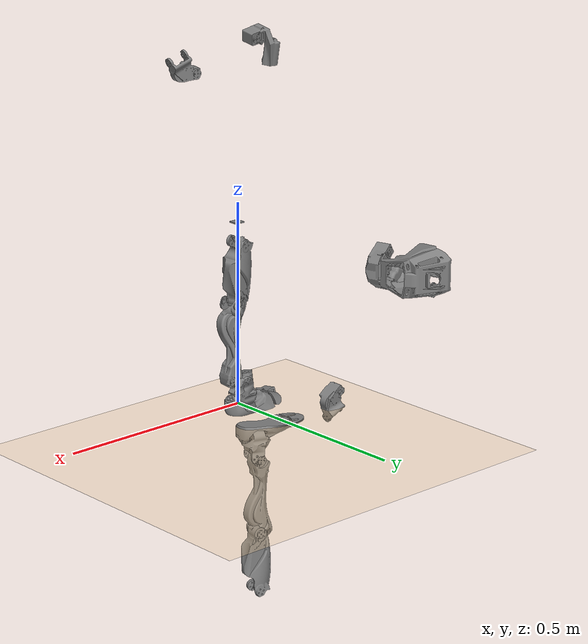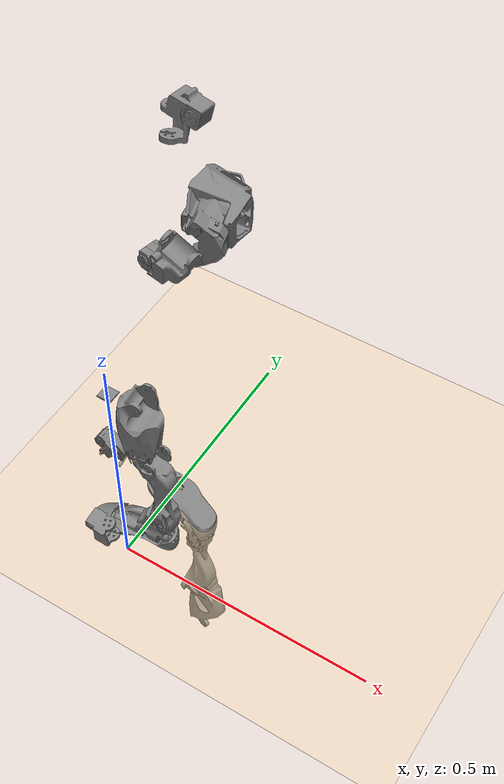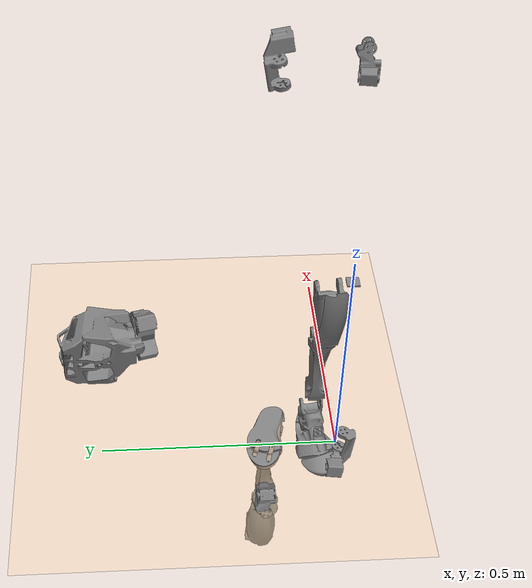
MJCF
<mujoco model="lilgreen_urdf_2025">
    <compiler angle="radian" />
    <asset>
        <mesh name="leg_left_hip_roll" file="meshes/leg_left_hip_roll.stl" scale="0.001 0.001 0.001" />
        <mesh name="leg_left_hip_yaw" file="meshes/leg_left_hip_yaw.stl" scale="0.001 0.001 0.001" />
        <mesh name="leg_left_hip_pitch" file="meshes/leg_left_hip_pitch.stl" scale="0.001 0.001 0.001" />
        <mesh name="leg_left_knee_pitch" file="meshes/leg_left_knee_pitch.stl" scale="0.001 0.001 0.001" />
        <mesh name="leg_left_ankle_pitch" file="meshes/leg_left_ankle_pitch.stl" scale="0.001 0.001 0.001" />
        <mesh name="leg_left_ankle_roll" file="meshes/leg_left_ankle_roll.stl" scale="0.001 0.001 0.001" />
        <mesh name="leg_left_toe_pitch" file="meshes/leg_left_toe_pitch.stl" scale="0.001 0.001 0.001" />
        <mesh name="leg_right_hip_roll" file="meshes/leg_right_hip_roll.stl" scale="0.001 0.001 0.001" />
        <mesh name="leg_right_hip_yaw" file="meshes/leg_right_hip_yaw.stl" scale="0.001 0.001 0.001" />
        <mesh name="leg_right_hip_pitch" file="meshes/leg_right_hip_pitch.stl" scale="0.001 0.001 0.001" />
        <mesh name="leg_right_knee_pitch" file="meshes/leg_right_knee_pitch.stl" scale="0.001 0.001 0.001" />
        <mesh name="leg_right_ankle_pitch" file="meshes/leg_right_ankle_pitch.stl" scale="0.001 0.001 0.001" />
        <mesh name="leg_right_ankle_roll" file="meshes/leg_right_ankle_roll.stl" scale="0.001 0.001 0.001" />
        <mesh name="leg_right_toe_pitch" file="meshes/leg_right_toe_pitch.stl" scale="0.001 0.001 0.001" />
        <mesh name="base_link" file="meshes/base_link.stl" scale="0.001 0.001 0.001" />
        <mesh name="IMU" file="meshes/IMU.stl" scale="0.001 0.001 0.001" />
    </asset>
    <worldbody>
        <light directional="true" pos="-0.5 0.5 3" dir="0 0 -1" />
        <geom pos="0 0 0" size="1 1 1" type="plane" rgba="1 0.83 0.61 0.5" />
        <body name="base_link" pos="0.040309900581241766 -0.016594084152055592 0.4169388309006876" euler="-1.5707963267948963 -0.26179938779915374 1.149385969128149e-16">
            <geom name="base_link_geom" type="mesh" mesh="base_link" pos="0 0 0" euler="0 0 0" />
            <inertial mass="2.8792991041177807" pos="-0.03765868857950932 -0.07389451183145564 0.02955298279552922" fullinertia="0.009366749557186443 0.0042877476463523525 0.00946850589048177 -0.0007386777185639633 7.27795157012808e-05 -0.00017963496316084039" />
            <body name="leg_left_hip_roll" pos="-0.015921417823471794 -0.053526458199433975 0.08345170299909445" euler="1.4020963555373356 0.044958599617583896 -1.8287938019876295">
                <joint name="base_link_leg_left_hip_roll_joint" type="hinge" axis="-0.1736481776669238 -2.8074764735208614e-14 -0.9848077530122081" pos="0.019411471619884376 -0.02176210183200696 -0.02563653230341094" />
                <geom name="leg_left_hip_roll_geom" type="mesh" mesh="leg_left_hip_roll" pos="0 0 0" euler="0 0 0" />
                <inertial mass="0.3807019177780353" pos="0.0004589390420128578 -0.02261860660376533 -0.0209664685765215" fullinertia="0.00033893410522178624 0.00035386807363668423 0.00018458845717217353 3.980070952744518e-05 6.86156956863731e-05 -7.400610491268867e-05" />
                <body name="leg_left_hip_yaw" pos="-0.03895096552778004 -0.0033541434815032678 -0.038717280452832625" euler="2.8023802757219887 -0.14230117848658466 1.4243955179178887">
                    <joint name="leg_left_hip_roll_leg_left_hip_yaw_joint" type="hinge" axis="-0.9398131806792624 -0.09088034266603659 -0.3293811602663786" pos="0.03676571884739728 -0.003962447077278146 -0.030046770930205614" />
                    <geom name="leg_left_hip_yaw_geom" type="mesh" mesh="leg_left_hip_yaw" pos="0 0 0" euler="0 0 0" />
                    <inertial mass="0.33291418473679235" pos="0.0071519104767469015 -0.0048197034017870245 -0.00801263093406393" fullinertia="0.00010963937482653721 0.0001786300419983171 0.00013668996099859424 -1.299507285685765e-05 1.3466039364351266e-05 1.1598203321270066e-05" />
                    <body name="leg_left_hip_pitch" pos="-0.2107826562516604 -0.05058961585102884 0.37245671318866747" euler="-0.02154697899364713 -0.3544857952827363 0.2580773194925355">
                        <joint name="leg_left_hip_yaw_leg_left_hip_pitch_joint" type="hinge" axis="0.26239326654178624 0.9647491120688804 0.02020560270913365" pos="0.051371615574704065 0.019492880077468744 -0.4130408970632061" />
                        <geom name="leg_left_hip_pitch_geom" type="mesh" mesh="leg_left_hip_pitch" pos="0 0 0" euler="0 0 0" />
                        <inertial mass="2.5586264255364757" pos="0.04919944332989568 0.03172114418001775 -0.3448101168192959" fullinertia="0.003523705514749847 0.0037149984746598233 0.0013940467793523868 -2.542881916075783e-05 -0.00021619348143814377 3.8209122078029515e-05" />
                        <body name="leg_left_knee_pitch" pos="-0.007203233103054494 -0.00021854339229704145 0.001994394021918075" euler="0.020940966918480325 5.787037515858658e-15 -0.1782354904317291">
                            <joint name="leg_left_hip_pitch_leg_left_knee_pitch_joint" type="hinge" axis="3.405371246939791e-07 0.9999996411463404 2.456039678976757e-07" pos="0.055942609783903065 0.02006022865879103 -0.2720894611928033" />
                            <geom name="leg_left_knee_pitch_geom" type="mesh" mesh="leg_left_knee_pitch" pos="0 0 0" euler="0 0 0" />
                            <inertial mass="0.2823179687491023" pos="0.057950143008089976 0.04168090977519618 -0.1747540714378571" fullinertia="0.001136993450576003 0.001153684769356533 8.623749352238441e-05 -1.1353607065963228e-06 -5.996747975921448e-05 -3.193280568368747e-05" />
                            <body name="leg_left_ankle_pitch" pos="0.010692005380269985 -0.013537129089899142 -0.0011714072433970768" euler="-0.020238039388117236 -4.233020704791357e-11 0.17851314964505952">
                                <joint name="leg_left_knee_pitch_leg_left_ankle_pitch_joint" type="hinge" axis="0.25881932928605494 0.9659260311643153 -2.66534055954476e-07" pos="0.05900941668928826 0.028921779887913005 -0.08027900859830071" />
                                <geom name="leg_left_ankle_pitch_geom" type="mesh" mesh="leg_left_ankle_pitch" pos="0 0 0" euler="0 0 0" />
                                <inertial mass="0.11561362509497823" pos="0.05575578305980872 0.04992597978179207 -0.04334307329419745" fullinertia="4.976189060592942e-05 4.528657195874123e-05 3.4805391385926574e-05 -8.469245656481909e-07 8.487821375354322e-07 2.859985839015472e-06" />
                                <body name="leg_left_ankle_roll" pos="-0.0004675273538664193 -0.0002695194238283705 -0.0001235091123687132" euler="0.00891298465987352 4.657732532997721e-16 0.0013972003350839729">
                                    <joint name="leg_left_ankle_pitch_leg_left_ankle_roll_joint" type="hinge" axis="0.9659263484890159 -0.25881877317086693 -5.847554598696625e-08" pos="0.0342006588900956 0.045972627809439906 -0.031135655432365055" />
                                    <geom name="leg_left_ankle_roll_geom" type="mesh" mesh="leg_left_ankle_roll" pos="0 0 0" euler="0 0 0" />
                                    <inertial mass="0.15237392056454174" pos="0.031550264125235525 0.056058671040634826 -0.011357340804697892" fullinertia="6.82604179807571e-05 0.0002231586535975349 0.00026280284118912955 4.5606080043599167e-05 4.4909654466981975e-06 -6.383351969716426e-06" />
                                    <body name="leg_left_toe_pitch" pos="0.00018117333157137595 0.0006761480784020258 1.7108536809473662e-15" euler="-2.490022077417112e-14 5.221517662690195e-16 -1.7470291706345191e-15">
                                        <joint name="leg_left_ankle_roll_leg_left_toe_pitch_joint" type="hinge" axis="-0.2588193741506354 -0.9659252980174059 5.048137626945115e-07" pos="-0.028866913835455137 0.06930430392450652 -0.015325689785456348" />
                                        <geom name="leg_left_toe_pitch_geom" type="mesh" mesh="leg_left_toe_pitch" pos="0 0 0" euler="0 0 0" />
                                        <inertial mass="0.030347897482325643" pos="-0.044009029327274546 0.06923741044202503 -0.006644828799731139" fullinertia="8.322270717965043e-06 4.375858788717152e-06 1.0964675787846563e-05 -4.254657061268546e-07 2.8711167367628446e-07 -5.473055017151413e-07" />
                                    </body>
                                </body>
                            </body>
                        </body>
                    </body>
                </body>
            </body>
            <body name="leg_right_hip_roll" pos="-0.046924473884280817 -0.053526458199433906 -0.03225327669260787" euler="-1.4020963555373511 0.0449585996176396 -1.3127988516021645">
                <joint name="base_link_leg_right_hip_roll_joint" type="hinge" axis="0.17364817766692384 2.806956056478065e-14 -0.9848077530122077" pos="0.01941147137342204 -0.02176210164639696 0.025636532259952917" />
                <geom name="leg_right_hip_roll_geom" type="mesh" mesh="leg_right_hip_roll" pos="0 0 0" euler="0 0 0" />
                <inertial mass="0.3807019080396239" pos="0.0004589384983464213 -0.02261860392317244 0.02096646884633585" fullinertia="0.0003389341011020629 0.00035386805655577885 0.00018458843903059474 3.9800685305701386e-05 -6.861569497548588e-05 7.400610637538893e-05" />
                <body name="leg_right_hip_yaw" pos="-0.038950965527780566 -0.0033541434815032986 0.03871728045283227" euler="-2.8023802757219904 0.14230117848657645 1.4243955179178645">
                    <joint name="leg_right_hip_roll_leg_right_hip_yaw_joint" type="hinge" axis="0.9398131806792608 0.09088034266605417 -0.3293811602663778" pos="0.03676571865082668 -0.0039624468449257775 0.030046770996955435" />
                    <geom name="leg_right_hip_yaw_geom" type="mesh" mesh="leg_right_hip_yaw" pos="0 0 0" euler="0 0 0" />
                    <inertial mass="0.3329141813849623" pos="0.007151910688176806 -0.004819703292191818 0.008012631000082527" fullinertia="0.0001096393734218638 0.0001786300392341752 0.00013668995771487405 -1.2995071897491965e-05 -1.3466038863288899e-05 -1.159820328760022e-05" />
                    <body name="leg_right_hip_pitch" pos="-0.2107826562516599 -0.05058961585102899 -0.37245671318866774" euler="0.02154697899364676 0.35448579528273527 0.25807731949253554">
                        <joint name="leg_right_hip_yaw_leg_right_hip_pitch_joint" type="hinge" axis="-0.2623932665417697 -0.9647491120688845 0.02020560270913354" pos="0.051371615435398435 0.01949288035598196 0.4130408970528656" />
                        <geom name="leg_right_hip_pitch_geom" type="mesh" mesh="leg_right_hip_pitch" pos="0 0 0" euler="0 0 0" />
                        <inertial mass="2.558626424804792" pos="0.04919944332808778 0.03172114417660598 0.34481011682801777" fullinertia="0.003523705514669722 0.0037149984745529865 0.0013940467791617981 -2.5428818977888715e-05 0.00021619348131458413 -3.8209122759344234e-05" />
                        <body name="leg_right_knee_pitch" pos="-0.007203233103054494 -0.00021854339229709474 -0.0019943940219186254" euler="-0.020940966918480304 -5.722852747247516e-15 -0.1782354904317293">
                            <joint name="leg_right_hip_pitch_leg_right_knee_pitch_joint" type="hinge" axis="-3.405371070689582e-07 -0.9999996411463405 2.4560396764440606e-07" pos="0.0559426095973981 0.020060228908347192 0.2720894611882974" />
                            <geom name="leg_right_knee_pitch_geom" type="mesh" mesh="leg_right_knee_pitch" pos="0 0 0" euler="0 0 0" />
                            <inertial mass="0.2823180672271054" pos="0.057950142228655445 0.04168090791018378 0.17475410362098248" fullinertia="0.0011369943855038267 0.0011536856912205524 8.623751781739967e-05 -1.135361656855069e-06 5.996750171161377e-05 3.193286354316664e-05" />
                            <body name="leg_right_ankle_pitch" pos="0.010692005380270056 -0.013537129089899187 0.0011714072433970553" euler="0.020238039388117284 4.233022092570138e-11 0.1785131496450593">
                                <joint name="leg_right_knee_pitch_leg_right_ankle_pitch_joint" type="hinge" axis="-0.2588193292860376 -0.9659260311643205 -2.6653405607590663e-07" pos="0.059009416550034374 0.02892178016648075 0.0802790085887455" />
                                <geom name="leg_right_ankle_pitch_geom" type="mesh" mesh="leg_right_ankle_pitch" pos="0 0 0" euler="0 0 0" />
                                <inertial mass="0.11561362457503904" pos="0.05575579069901836 0.04992597865585887 0.043343068254799" fullinertia="4.976181838045671e-05 4.528651267259722e-05 3.4805401942381664e-05 -8.46938350839325e-07 -8.488601526379858e-07 -2.859970852442619e-06" />
                                <body name="leg_right_ankle_roll" pos="0.0014650456569394966 -0.0007844373723255327 0.0001280986896794009" euler="-0.008912984659873687 -3.8163916471489746e-16 0.001397200335083208">
                                    <joint name="leg_right_ankle_pitch_leg_right_ankle_roll_joint" type="hinge" axis="-0.9659263484890207 0.25881877317084906 -5.8475545046746125e-08" pos="0.032268807098652735 0.04649026617848076 0.031135655425293004" />
                                    <geom name="leg_right_ankle_roll_geom" type="mesh" mesh="leg_right_ankle_roll" pos="0 0 0" euler="0 0 0" />
                                    <inertial mass="0.15237292646979797" pos="0.031550355292048415 0.05605855995753034 0.011357337950485803" fullinertia="6.826009259370633e-05 0.00022315841771306376 0.0002628023533443964 4.560584630846836e-05 -4.490978346663637e-06 6.383360831259482e-06" />
                                    <body name="leg_right_toe_pitch" pos="0.00018117333157138482 0.0006761480784019991 -1.7222334669497742e-15" euler="2.5004304182729723e-14 -5.394990010287875e-16 -1.759768546161223e-15">
                                        <joint name="leg_right_ankle_roll_leg_right_toe_pitch_joint" type="hinge" axis="0.25881937415061845 0.9659252980174108 5.048137629304339e-07" pos="-0.028867466757023213 0.06930428828361108 0.015325724658682607" />
                                        <geom name="leg_right_toe_pitch_geom" type="mesh" mesh="leg_right_toe_pitch" pos="0 0 0" euler="0 0 0" />
                                        <inertial mass="0.03034789132477301" pos="-0.044009348556818484 0.06923727441921367 0.006644926106698121" fullinertia="8.322309343796648e-06 4.375791780556114e-06 1.0964655275498788e-05 -4.252795482021673e-07 -2.871635095788846e-07 5.472378289236361e-07" />
                                    </body>
                                </body>
                            </body>
                        </body>
                    </body>
                </body>
            </body>
            <body name="IMU" pos="-0.012630873508763503 0.41270820722517804 0.09624258120269334" euler="1.5707963267948968 -2.873464922820437e-17 -1.832595714594052">
                <geom name="IMU_geom" type="mesh" mesh="IMU" pos="0 0 0" euler="0 0 0" />
                <inertial mass="0.014574034267677826" pos="0.07309999999999985 -0.0001999999999995595 0.449461862106195" fullinertia="7.939304310514508e-07 7.694460534822024e-07 1.5426129471193568e-06 2.265197836176596e-22 -2.7409593094776076e-19 -1.0250234025002139e-20" />
            </body>
        </body>
    </worldbody>
</mujoco>
